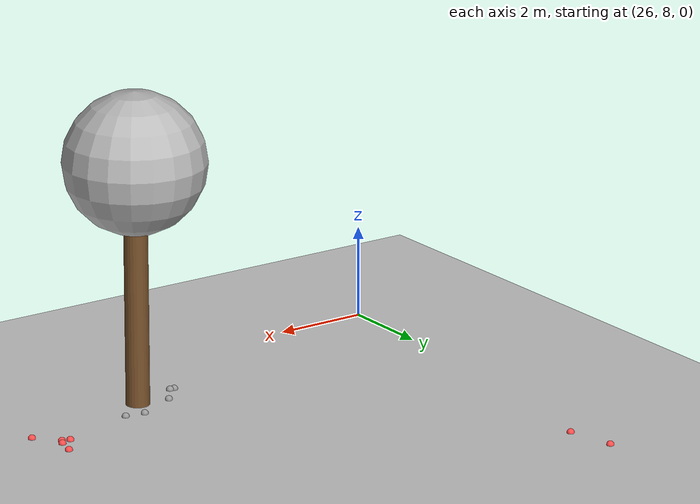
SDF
<sdf version="1.7">
 <world name="default">
  <model name="ground_plane">
   <static>1</static>
   <link name="link">
    <collision name="collision">
     <geometry><plane><normal>0 0 1</normal><size>100 100</size></plane></geometry>
     <surface>
      <contact><collide_bitmask>65535</collide_bitmask></contact>
      <friction><ode><mu>100</mu><mu2>50</mu2></ode></friction>
     </surface>
    </collision>
    <visual name="visual">
     <cast_shadows>0</cast_shadows>
     <geometry><plane><normal>0 0 1</normal><size>100 100</size></plane></geometry>
     <material>
      <script><uri>file://media/materials/scripts/gazebo.material</uri><name>Gazebo/Grey</name></script>
     </material>
    </visual>
   </link>
  </model>
  <model name="tree_simple_71">
   <static>1</static>
   <link name="link">
    <pose>0 0 0.1 0 -0 0</pose>
    <inertial>
     <mass>666</mass>
     <inertia>
      <ixx>0.0861167</ixx>
      <ixy>0</ixy>
      <ixz>0</ixz>
      <iyy>0.0861167</iyy>
      <iyz>0</iyz>
      <izz>0.0861167</izz>
     </inertia>
    </inertial>
    <collision name="collision_trunk">
     <pose>0 0 2 0 -0 0</pose>
     <geometry><cylinder><radius>0.25</radius><length>4</length></cylinder></geometry>
     <surface>
      <contact>
       <poissons_ratio>0.347</poissons_ratio>
       <elastic_modulus>8.8e+09</elastic_modulus>
       <ode><kp>100000</kp><kd>100</kd><max_vel>100</max_vel><min_depth>0.001</min_depth></ode>
      </contact>
      <friction>
       <torsional>
        <coefficient>1</coefficient>
        <use_patch_radius>0</use_patch_radius>
        <surface_radius>0.01</surface_radius>
       </torsional>
      </friction>
     </surface>
    </collision>
    <collision name="collision_treetop">
     <pose>0 0 5.2 0 -0 0</pose>
     <geometry><sphere><radius>1.5</radius></sphere></geometry>
     <surface>
      <contact>
       <poissons_ratio>0.347</poissons_ratio>
       <elastic_modulus>8.8e+09</elastic_modulus>
       <ode><kp>100000</kp><kd>100</kd><max_vel>100</max_vel><min_depth>0.001</min_depth></ode>
      </contact>
      <friction>
       <torsional>
        <coefficient>1</coefficient>
        <use_patch_radius>0</use_patch_radius>
        <surface_radius>0.01</surface_radius>
       </torsional>
      </friction>
     </surface>
    </collision>
    <visual name="trunk">
     <pose>0 0 2 0 -0 0</pose>
     <geometry><cylinder><radius>0.25</radius><length>4</length></cylinder></geometry>
     <material>
      <script>
       <uri>model://tree_simple/scripts</uri>
       <uri>model://tree_simple/materials/textures</uri>
       <name>TreeSimple/Trunk</name>
      </script>
     </material>
    </visual>
    <visual name="treetop">
     <pose>0 0 5.2 0 -0 0</pose>
     <geometry><sphere><radius>1.5</radius></sphere></geometry>
     <material>
      <script>
       <uri>model://tree_simple/scripts</uri>
       <uri>model://tree_simple/materials/textures</uri>
       <name>TreeSimple/Treetop</name>
      </script>
     </material>
    </visual>
   </link>
   <pose>33 10 -0.1 0 -0 0</pose>
  </model>
  <model name="seed_red_234">
   <link name="link">
    <inertial>
     <mass>1</mass>
     <inertia><ixx>0.1</ixx><ixy>0</ixy><ixz>0</ixz><iyy>0.1</iyy><iyz>0</iyz><izz>0.1</izz></inertia>
    </inertial>
    <visual name="visual">
     <geometry><sphere><radius>0.08</radius></sphere></geometry>
     <material>
      <script><name>Gazebo/Grey</name><uri>file://media/materials/scripts/gazebo.material</uri></script>
      <shader type="pixel"><normal_map>__default__</normal_map></shader>
      <ambient>1 0.3 0.3 1</ambient>
      <diffuse>0.7 0.7 0.7 1</diffuse>
      <specular>0.01 0.01 0.01 1</specular>
      <emissive>0 0 0 1</emissive>
     </material>
    </visual>
    <collision name="collision">
     <geometry><sphere><radius>0.0005</radius></sphere></geometry>
     <surface>
      <friction>
       <ode><mu>1</mu><mu2>1</mu2><fdir1>0 0 0</fdir1><slip1>0</slip1><slip2>0</slip2></ode>
       <torsional>
        <coefficient>1</coefficient>
        <patch_radius>0</patch_radius>
        <surface_radius>0</surface_radius>
        <use_patch_radius>1</use_patch_radius>
        <ode><slip>0</slip></ode>
       </torsional>
      </friction>
      <bounce><restitution_coefficient>0</restitution_coefficient><threshold>1e+06</threshold></bounce>
      <contact>
       <collide_without_contact>0</collide_without_contact>
       <collide_without_contact_bitmask>1</collide_without_contact_bitmask>
       <collide_bitmask>1</collide_bitmask>
       <ode>
        <soft_cfm>0</soft_cfm>
        <soft_erp>0.2</soft_erp>
        <kp>1e+13</kp>
        <kd>1</kd>
        <max_vel>0.01</max_vel>
        <min_depth>0</min_depth>
       </ode>
       <bullet>
        <split_impulse>1</split_impulse>
        <split_impulse_penetration_threshold>-0.01</split_impulse_penetration_threshold>
        <soft_cfm>0</soft_cfm>
        <soft_erp>0.2</soft_erp>
        <kp>1e+13</kp>
        <kd>1</kd>
       </bullet>
      </contact>
     </surface>
    </collision>
   </link>
   <static>0</static>
   <pose>26.737 16.4394 0.0005 0 -0 0</pose>
  </model>
  <model name="seed_red_235">
   <link name="link">
    <inertial>
     <mass>1</mass>
     <inertia><ixx>0.1</ixx><ixy>0</ixy><ixz>0</ixz><iyy>0.1</iyy><iyz>0</iyz><izz>0.1</izz></inertia>
    </inertial>
    <visual name="visual">
     <geometry><sphere><radius>0.08</radius></sphere></geometry>
     <material>
      <script><name>Gazebo/Grey</name><uri>file://media/materials/scripts/gazebo.material</uri></script>
      <shader type="pixel"><normal_map>__default__</normal_map></shader>
      <ambient>1 0.3 0.3 1</ambient>
      <diffuse>0.7 0.7 0.7 1</diffuse>
      <specular>0.01 0.01 0.01 1</specular>
      <emissive>0 0 0 1</emissive>
     </material>
    </visual>
    <collision name="collision">
     <geometry><sphere><radius>0.0005</radius></sphere></geometry>
     <surface>
      <friction>
       <ode><mu>1</mu><mu2>1</mu2><fdir1>0 0 0</fdir1><slip1>0</slip1><slip2>0</slip2></ode>
       <torsional>
        <coefficient>1</coefficient>
        <patch_radius>0</patch_radius>
        <surface_radius>0</surface_radius>
        <use_patch_radius>1</use_patch_radius>
        <ode><slip>0</slip></ode>
       </torsional>
      </friction>
      <bounce><restitution_coefficient>0</restitution_coefficient><threshold>1e+06</threshold></bounce>
      <contact>
       <collide_without_contact>0</collide_without_contact>
       <collide_without_contact_bitmask>1</collide_without_contact_bitmask>
       <collide_bitmask>1</collide_bitmask>
       <ode>
        <soft_cfm>0</soft_cfm>
        <soft_erp>0.2</soft_erp>
        <kp>1e+13</kp>
        <kd>1</kd>
        <max_vel>0.01</max_vel>
        <min_depth>0</min_depth>
       </ode>
       <bullet>
        <split_impulse>1</split_impulse>
        <split_impulse_penetration_threshold>-0.01</split_impulse_penetration_threshold>
        <soft_cfm>0</soft_cfm>
        <soft_erp>0.2</soft_erp>
        <kp>1e+13</kp>
        <kd>1</kd>
       </bullet>
      </contact>
     </surface>
    </collision>
   </link>
   <static>0</static>
   <pose>26.516 17.4502 0.0005 0 -0 0</pose>
  </model>
  <model name="seed_red_277">
   <link name="link">
    <inertial>
     <mass>1</mass>
     <inertia><ixx>0.1</ixx><ixy>0</ixy><ixz>0</ixz><iyy>0.1</iyy><iyz>0</iyz><izz>0.1</izz></inertia>
    </inertial>
    <visual name="visual">
     <geometry><sphere><radius>0.08</radius></sphere></geometry>
     <material>
      <script><name>Gazebo/Grey</name><uri>file://media/materials/scripts/gazebo.material</uri></script>
      <shader type="pixel"><normal_map>__default__</normal_map></shader>
      <ambient>1 0.3 0.3 1</ambient>
      <diffuse>0.7 0.7 0.7 1</diffuse>
      <specular>0.01 0.01 0.01 1</specular>
      <emissive>0 0 0 1</emissive>
     </material>
    </visual>
    <collision name="collision">
     <geometry><sphere><radius>0.0005</radius></sphere></geometry>
     <surface>
      <friction>
       <ode><mu>1</mu><mu2>1</mu2><fdir1>0 0 0</fdir1><slip1>0</slip1><slip2>0</slip2></ode>
       <torsional>
        <coefficient>1</coefficient>
        <patch_radius>0</patch_radius>
        <surface_radius>0</surface_radius>
        <use_patch_radius>1</use_patch_radius>
        <ode><slip>0</slip></ode>
       </torsional>
      </friction>
      <bounce><restitution_coefficient>0</restitution_coefficient><threshold>1e+06</threshold></bounce>
      <contact>
       <collide_without_contact>0</collide_without_contact>
       <collide_without_contact_bitmask>1</collide_without_contact_bitmask>
       <collide_bitmask>1</collide_bitmask>
       <ode>
        <soft_cfm>0</soft_cfm>
        <soft_erp>0.2</soft_erp>
        <kp>1e+13</kp>
        <kd>1</kd>
        <max_vel>0.01</max_vel>
        <min_depth>0</min_depth>
       </ode>
       <bullet>
        <split_impulse>1</split_impulse>
        <split_impulse_penetration_threshold>-0.01</split_impulse_penetration_threshold>
        <soft_cfm>0</soft_cfm>
        <soft_erp>0.2</soft_erp>
        <kp>1e+13</kp>
        <kd>1</kd>
       </bullet>
      </contact>
     </surface>
    </collision>
   </link>
   <static>0</static>
   <pose>35.4341 10.9434 0.0005 0 -0 0</pose>
  </model>
  <model name="seed_red_278">
   <link name="link">
    <inertial>
     <mass>1</mass>
     <inertia><ixx>0.1</ixx><ixy>0</ixy><ixz>0</ixz><iyy>0.1</iyy><iyz>0</iyz><izz>0.1</izz></inertia>
    </inertial>
    <visual name="visual">
     <geometry><sphere><radius>0.08</radius></sphere></geometry>
     <material>
      <script><name>Gazebo/Grey</name><uri>file://media/materials/scripts/gazebo.material</uri></script>
      <shader type="pixel"><normal_map>__default__</normal_map></shader>
      <ambient>1 0.3 0.3 1</ambient>
      <diffuse>0.7 0.7 0.7 1</diffuse>
      <specular>0.01 0.01 0.01 1</specular>
      <emissive>0 0 0 1</emissive>
     </material>
    </visual>
    <collision name="collision">
     <geometry><sphere><radius>0.0005</radius></sphere></geometry>
     <surface>
      <friction>
       <ode><mu>1</mu><mu2>1</mu2><fdir1>0 0 0</fdir1><slip1>0</slip1><slip2>0</slip2></ode>
       <torsional>
        <coefficient>1</coefficient>
        <patch_radius>0</patch_radius>
        <surface_radius>0</surface_radius>
        <use_patch_radius>1</use_patch_radius>
        <ode><slip>0</slip></ode>
       </torsional>
      </friction>
      <bounce><restitution_coefficient>0</restitution_coefficient><threshold>1e+06</threshold></bounce>
      <contact>
       <collide_without_contact>0</collide_without_contact>
       <collide_without_contact_bitmask>1</collide_without_contact_bitmask>
       <collide_bitmask>1</collide_bitmask>
       <ode>
        <soft_cfm>0</soft_cfm>
        <soft_erp>0.2</soft_erp>
        <kp>1e+13</kp>
        <kd>1</kd>
        <max_vel>0.01</max_vel>
        <min_depth>0</min_depth>
       </ode>
       <bullet>
        <split_impulse>1</split_impulse>
        <split_impulse_penetration_threshold>-0.01</split_impulse_penetration_threshold>
        <soft_cfm>0</soft_cfm>
        <soft_erp>0.2</soft_erp>
        <kp>1e+13</kp>
        <kd>1</kd>
       </bullet>
      </contact>
     </surface>
    </collision>
   </link>
   <static>0</static>
   <pose>35.5951 11.4662 0.0005 0 -0 0</pose>
  </model>
  <model name="seed_red_279">
   <link name="link">
    <inertial>
     <mass>1</mass>
     <inertia><ixx>0.1</ixx><ixy>0</ixy><ixz>0</ixz><iyy>0.1</iyy><iyz>0</iyz><izz>0.1</izz></inertia>
    </inertial>
    <visual name="visual">
     <geometry><sphere><radius>0.08</radius></sphere></geometry>
     <material>
      <script><name>Gazebo/Grey</name><uri>file://media/materials/scripts/gazebo.material</uri></script>
      <shader type="pixel"><normal_map>__default__</normal_map></shader>
      <ambient>1 0.3 0.3 1</ambient>
      <diffuse>0.7 0.7 0.7 1</diffuse>
      <specular>0.01 0.01 0.01 1</specular>
      <emissive>0 0 0 1</emissive>
     </material>
    </visual>
    <collision name="collision">
     <geometry><sphere><radius>0.0005</radius></sphere></geometry>
     <surface>
      <friction>
       <ode><mu>1</mu><mu2>1</mu2><fdir1>0 0 0</fdir1><slip1>0</slip1><slip2>0</slip2></ode>
       <torsional>
        <coefficient>1</coefficient>
        <patch_radius>0</patch_radius>
        <surface_radius>0</surface_radius>
        <use_patch_radius>1</use_patch_radius>
        <ode><slip>0</slip></ode>
       </torsional>
      </friction>
      <bounce><restitution_coefficient>0</restitution_coefficient><threshold>1e+06</threshold></bounce>
      <contact>
       <collide_without_contact>0</collide_without_contact>
       <collide_without_contact_bitmask>1</collide_without_contact_bitmask>
       <collide_bitmask>1</collide_bitmask>
       <ode>
        <soft_cfm>0</soft_cfm>
        <soft_erp>0.2</soft_erp>
        <kp>1e+13</kp>
        <kd>1</kd>
        <max_vel>0.01</max_vel>
        <min_depth>0</min_depth>
       </ode>
       <bullet>
        <split_impulse>1</split_impulse>
        <split_impulse_penetration_threshold>-0.01</split_impulse_penetration_threshold>
        <soft_cfm>0</soft_cfm>
        <soft_erp>0.2</soft_erp>
        <kp>1e+13</kp>
        <kd>1</kd>
       </bullet>
      </contact>
     </surface>
    </collision>
   </link>
   <static>0</static>
   <pose>35.2662 10.9945 0.0005 0 -0 0</pose>
  </model>
  <model name="seed_red_280">
   <link name="link">
    <inertial>
     <mass>1</mass>
     <inertia><ixx>0.1</ixx><ixy>0</ixy><ixz>0</ixz><iyy>0.1</iyy><iyz>0</iyz><izz>0.1</izz></inertia>
    </inertial>
    <visual name="visual">
     <geometry><sphere><radius>0.08</radius></sphere></geometry>
     <material>
      <script><name>Gazebo/Grey</name><uri>file://media/materials/scripts/gazebo.material</uri></script>
      <shader type="pixel"><normal_map>__default__</normal_map></shader>
      <ambient>1 0.3 0.3 1</ambient>
      <diffuse>0.7 0.7 0.7 1</diffuse>
      <specular>0.01 0.01 0.01 1</specular>
      <emissive>0 0 0 1</emissive>
     </material>
    </visual>
    <collision name="collision">
     <geometry><sphere><radius>0.0005</radius></sphere></geometry>
     <surface>
      <friction>
       <ode><mu>1</mu><mu2>1</mu2><fdir1>0 0 0</fdir1><slip1>0</slip1><slip2>0</slip2></ode>
       <torsional>
        <coefficient>1</coefficient>
        <patch_radius>0</patch_radius>
        <surface_radius>0</surface_radius>
        <use_patch_radius>1</use_patch_radius>
        <ode><slip>0</slip></ode>
       </torsional>
      </friction>
      <bounce><restitution_coefficient>0</restitution_coefficient><threshold>1e+06</threshold></bounce>
      <contact>
       <collide_without_contact>0</collide_without_contact>
       <collide_without_contact_bitmask>1</collide_without_contact_bitmask>
       <collide_bitmask>1</collide_bitmask>
       <ode>
        <soft_cfm>0</soft_cfm>
        <soft_erp>0.2</soft_erp>
        <kp>1e+13</kp>
        <kd>1</kd>
        <max_vel>0.01</max_vel>
        <min_depth>0</min_depth>
       </ode>
       <bullet>
        <split_impulse>1</split_impulse>
        <split_impulse_penetration_threshold>-0.01</split_impulse_penetration_threshold>
        <soft_cfm>0</soft_cfm>
        <soft_erp>0.2</soft_erp>
        <kp>1e+13</kp>
        <kd>1</kd>
       </bullet>
      </contact>
     </surface>
    </collision>
   </link>
   <static>0</static>
   <pose>35.4997 11.0697 0.0005 0 -0 0</pose>
  </model>
  <model name="seed_red_281">
   <link name="link">
    <inertial>
     <mass>1</mass>
     <inertia><ixx>0.1</ixx><ixy>0</ixy><ixz>0</ixz><iyy>0.1</iyy><iyz>0</iyz><izz>0.1</izz></inertia>
    </inertial>
    <visual name="visual">
     <geometry><sphere><radius>0.08</radius></sphere></geometry>
     <material>
      <script><name>Gazebo/Grey</name><uri>file://media/materials/scripts/gazebo.material</uri></script>
      <shader type="pixel"><normal_map>__default__</normal_map></shader>
      <ambient>1 0.3 0.3 1</ambient>
      <diffuse>0.7 0.7 0.7 1</diffuse>
      <specular>0.01 0.01 0.01 1</specular>
      <emissive>0 0 0 1</emissive>
     </material>
    </visual>
    <collision name="collision">
     <geometry><sphere><radius>0.0005</radius></sphere></geometry>
     <surface>
      <friction>
       <ode><mu>1</mu><mu2>1</mu2><fdir1>0 0 0</fdir1><slip1>0</slip1><slip2>0</slip2></ode>
       <torsional>
        <coefficient>1</coefficient>
        <patch_radius>0</patch_radius>
        <surface_radius>0</surface_radius>
        <use_patch_radius>1</use_patch_radius>
        <ode><slip>0</slip></ode>
       </torsional>
      </friction>
      <bounce><restitution_coefficient>0</restitution_coefficient><threshold>1e+06</threshold></bounce>
      <contact>
       <collide_without_contact>0</collide_without_contact>
       <collide_without_contact_bitmask>1</collide_without_contact_bitmask>
       <collide_bitmask>1</collide_bitmask>
       <ode>
        <soft_cfm>0</soft_cfm>
        <soft_erp>0.2</soft_erp>
        <kp>1e+13</kp>
        <kd>1</kd>
        <max_vel>0.01</max_vel>
        <min_depth>0</min_depth>
       </ode>
       <bullet>
        <split_impulse>1</split_impulse>
        <split_impulse_penetration_threshold>-0.01</split_impulse_penetration_threshold>
        <soft_cfm>0</soft_cfm>
        <soft_erp>0.2</soft_erp>
        <kp>1e+13</kp>
        <kd>1</kd>
       </bullet>
      </contact>
     </surface>
    </collision>
   </link>
   <static>0</static>
   <pose>35.8527 10.4725 0.0005 0 -0 0</pose>
  </model>
  <model name="seed_black_56">
   <link name="link">
    <inertial>
     <mass>1</mass>
     <inertia><ixx>0.1</ixx><ixy>0</ixy><ixz>0</ixz><iyy>0.1</iyy><iyz>0</iyz><izz>0.1</izz></inertia>
    </inertial>
    <visual name="visual">
     <geometry><sphere><radius>0.08</radius></sphere></geometry>
     <material>
      <script><name>Gazebo/Grey</name><uri>file://media/materials/scripts/gazebo.material</uri></script>
      <shader type="pixel"><normal_map>__default__</normal_map></shader>
      <ambient>0 0 0 1</ambient>
      <diffuse>0.7 0.7 0.7 1</diffuse>
      <specular>0.01 0.01 0.01 1</specular>
      <emissive>0 0 0 1</emissive>
     </material>
    </visual>
    <collision name="collision">
     <geometry><sphere><radius>0.0005</radius></sphere></geometry>
     <surface>
      <friction>
       <ode><mu>1</mu><mu2>1</mu2><fdir1>0 0 0</fdir1><slip1>0</slip1><slip2>0</slip2></ode>
       <torsional>
        <coefficient>1</coefficient>
        <patch_radius>0</patch_radius>
        <surface_radius>0</surface_radius>
        <use_patch_radius>1</use_patch_radius>
        <ode><slip>0</slip></ode>
       </torsional>
      </friction>
      <bounce><restitution_coefficient>0</restitution_coefficient><threshold>1e+06</threshold></bounce>
      <contact>
       <collide_without_contact>0</collide_without_contact>
       <collide_without_contact_bitmask>1</collide_without_contact_bitmask>
       <collide_bitmask>1</collide_bitmask>
       <ode>
        <soft_cfm>0</soft_cfm>
        <soft_erp>0.2</soft_erp>
        <kp>1e+13</kp>
        <kd>1</kd>
        <max_vel>0.01</max_vel>
        <min_depth>0</min_depth>
       </ode>
       <bullet>
        <split_impulse>1</split_impulse>
        <split_impulse_penetration_threshold>-0.01</split_impulse_penetration_threshold>
        <soft_cfm>0</soft_cfm>
        <soft_erp>0.2</soft_erp>
        <kp>1e+13</kp>
        <kd>1</kd>
       </bullet>
      </contact>
     </surface>
    </collision>
   </link>
   <static>0</static>
   <pose>33.6072 10.4761 0.0005 0 -0 0</pose>
  </model>
  <model name="seed_black_57">
   <link name="link">
    <inertial>
     <mass>1</mass>
     <inertia><ixx>0.1</ixx><ixy>0</ixy><ixz>0</ixz><iyy>0.1</iyy><iyz>0</iyz><izz>0.1</izz></inertia>
    </inertial>
    <visual name="visual">
     <geometry><sphere><radius>0.08</radius></sphere></geometry>
     <material>
      <script><name>Gazebo/Grey</name><uri>file://media/materials/scripts/gazebo.material</uri></script>
      <shader type="pixel"><normal_map>__default__</normal_map></shader>
      <ambient>0 0 0 1</ambient>
      <diffuse>0.7 0.7 0.7 1</diffuse>
      <specular>0.01 0.01 0.01 1</specular>
      <emissive>0 0 0 1</emissive>
     </material>
    </visual>
    <collision name="collision">
     <geometry><sphere><radius>0.0005</radius></sphere></geometry>
     <surface>
      <friction>
       <ode><mu>1</mu><mu2>1</mu2><fdir1>0 0 0</fdir1><slip1>0</slip1><slip2>0</slip2></ode>
       <torsional>
        <coefficient>1</coefficient>
        <patch_radius>0</patch_radius>
        <surface_radius>0</surface_radius>
        <use_patch_radius>1</use_patch_radius>
        <ode><slip>0</slip></ode>
       </torsional>
      </friction>
      <bounce><restitution_coefficient>0</restitution_coefficient><threshold>1e+06</threshold></bounce>
      <contact>
       <collide_without_contact>0</collide_without_contact>
       <collide_without_contact_bitmask>1</collide_without_contact_bitmask>
       <collide_bitmask>1</collide_bitmask>
       <ode>
        <soft_cfm>0</soft_cfm>
        <soft_erp>0.2</soft_erp>
        <kp>1e+13</kp>
        <kd>1</kd>
        <max_vel>0.01</max_vel>
        <min_depth>0</min_depth>
       </ode>
       <bullet>
        <split_impulse>1</split_impulse>
        <split_impulse_penetration_threshold>-0.01</split_impulse_penetration_threshold>
        <soft_cfm>0</soft_cfm>
        <soft_erp>0.2</soft_erp>
        <kp>1e+13</kp>
        <kd>1</kd>
       </bullet>
      </contact>
     </surface>
    </collision>
   </link>
   <static>0</static>
   <pose>31.9762 9.64301 0.0005 0 -0 0</pose>
  </model>
  <model name="seed_black_58">
   <link name="link">
    <inertial>
     <mass>1</mass>
     <inertia><ixx>0.1</ixx><ixy>0</ixy><ixz>0</ixz><iyy>0.1</iyy><iyz>0</iyz><izz>0.1</izz></inertia>
    </inertial>
    <visual name="visual">
     <geometry><sphere><radius>0.08</radius></sphere></geometry>
     <material>
      <script><name>Gazebo/Grey</name><uri>file://media/materials/scripts/gazebo.material</uri></script>
      <shader type="pixel"><normal_map>__default__</normal_map></shader>
      <ambient>0 0 0 1</ambient>
      <diffuse>0.7 0.7 0.7 1</diffuse>
      <specular>0.01 0.01 0.01 1</specular>
      <emissive>0 0 0 1</emissive>
     </material>
    </visual>
    <collision name="collision">
     <geometry><sphere><radius>0.0005</radius></sphere></geometry>
     <surface>
      <friction>
       <ode><mu>1</mu><mu2>1</mu2><fdir1>0 0 0</fdir1><slip1>0</slip1><slip2>0</slip2></ode>
       <torsional>
        <coefficient>1</coefficient>
        <patch_radius>0</patch_radius>
        <surface_radius>0</surface_radius>
        <use_patch_radius>1</use_patch_radius>
        <ode><slip>0</slip></ode>
       </torsional>
      </friction>
      <bounce><restitution_coefficient>0</restitution_coefficient><threshold>1e+06</threshold></bounce>
      <contact>
       <collide_without_contact>0</collide_without_contact>
       <collide_without_contact_bitmask>1</collide_without_contact_bitmask>
       <collide_bitmask>1</collide_bitmask>
       <ode>
        <soft_cfm>0</soft_cfm>
        <soft_erp>0.2</soft_erp>
        <kp>1e+13</kp>
        <kd>1</kd>
        <max_vel>0.01</max_vel>
        <min_depth>0</min_depth>
       </ode>
       <bullet>
        <split_impulse>1</split_impulse>
        <split_impulse_penetration_threshold>-0.01</split_impulse_penetration_threshold>
        <soft_cfm>0</soft_cfm>
        <soft_erp>0.2</soft_erp>
        <kp>1e+13</kp>
        <kd>1</kd>
       </bullet>
      </contact>
     </surface>
    </collision>
   </link>
   <static>0</static>
   <pose>32.3186 10.12 0.0005 0 -0 0</pose>
  </model>
  <model name="seed_black_59">
   <link name="link">
    <inertial>
     <mass>1</mass>
     <inertia><ixx>0.1</ixx><ixy>0</ixy><ixz>0</ixz><iyy>0.1</iyy><iyz>0</iyz><izz>0.1</izz></inertia>
    </inertial>
    <visual name="visual">
     <geometry><sphere><radius>0.08</radius></sphere></geometry>
     <material>
      <script><name>Gazebo/Grey</name><uri>file://media/materials/scripts/gazebo.material</uri></script>
      <shader type="pixel"><normal_map>__default__</normal_map></shader>
      <ambient>0 0 0 1</ambient>
      <diffuse>0.7 0.7 0.7 1</diffuse>
      <specular>0.01 0.01 0.01 1</specular>
      <emissive>0 0 0 1</emissive>
     </material>
    </visual>
    <collision name="collision">
     <geometry><sphere><radius>0.0005</radius></sphere></geometry>
     <surface>
      <friction>
       <ode><mu>1</mu><mu2>1</mu2><fdir1>0 0 0</fdir1><slip1>0</slip1><slip2>0</slip2></ode>
       <torsional>
        <coefficient>1</coefficient>
        <patch_radius>0</patch_radius>
        <surface_radius>0</surface_radius>
        <use_patch_radius>1</use_patch_radius>
        <ode><slip>0</slip></ode>
       </torsional>
      </friction>
      <bounce><restitution_coefficient>0</restitution_coefficient><threshold>1e+06</threshold></bounce>
      <contact>
       <collide_without_contact>0</collide_without_contact>
       <collide_without_contact_bitmask>1</collide_without_contact_bitmask>
       <collide_bitmask>1</collide_bitmask>
       <ode>
        <soft_cfm>0</soft_cfm>
        <soft_erp>0.2</soft_erp>
        <kp>1e+13</kp>
        <kd>1</kd>
        <max_vel>0.01</max_vel>
        <min_depth>0</min_depth>
       </ode>
       <bullet>
        <split_impulse>1</split_impulse>
        <split_impulse_penetration_threshold>-0.01</split_impulse_penetration_threshold>
        <soft_cfm>0</soft_cfm>
        <soft_erp>0.2</soft_erp>
        <kp>1e+13</kp>
        <kd>1</kd>
       </bullet>
      </contact>
     </surface>
    </collision>
   </link>
   <static>0</static>
   <pose>33.1855 10.5428 0.0005 0 -0 0</pose>
  </model>
  <model name="seed_black_61">
   <link name="link">
    <inertial>
     <mass>1</mass>
     <inertia><ixx>0.1</ixx><ixy>0</ixy><ixz>0</ixz><iyy>0.1</iyy><iyz>0</iyz><izz>0.1</izz></inertia>
    </inertial>
    <visual name="visual">
     <geometry><sphere><radius>0.08</radius></sphere></geometry>
     <material>
      <script><name>Gazebo/Grey</name><uri>file://media/materials/scripts/gazebo.material</uri></script>
      <shader type="pixel"><normal_map>__default__</normal_map></shader>
      <ambient>0 0 0 1</ambient>
      <diffuse>0.7 0.7 0.7 1</diffuse>
      <specular>0.01 0.01 0.01 1</specular>
      <emissive>0 0 0 1</emissive>
     </material>
    </visual>
    <collision name="collision">
     <geometry><sphere><radius>0.0005</radius></sphere></geometry>
     <surface>
      <friction>
       <ode><mu>1</mu><mu2>1</mu2><fdir1>0 0 0</fdir1><slip1>0</slip1><slip2>0</slip2></ode>
       <torsional>
        <coefficient>1</coefficient>
        <patch_radius>0</patch_radius>
        <surface_radius>0</surface_radius>
        <use_patch_radius>1</use_patch_radius>
        <ode><slip>0</slip></ode>
       </torsional>
      </friction>
      <bounce><restitution_coefficient>0</restitution_coefficient><threshold>1e+06</threshold></bounce>
      <contact>
       <collide_without_contact>0</collide_without_contact>
       <collide_without_contact_bitmask>1</collide_without_contact_bitmask>
       <collide_bitmask>1</collide_bitmask>
       <ode>
        <soft_cfm>0</soft_cfm>
        <soft_erp>0.2</soft_erp>
        <kp>1e+13</kp>
        <kd>1</kd>
        <max_vel>0.01</max_vel>
        <min_depth>0</min_depth>
       </ode>
       <bullet>
        <split_impulse>1</split_impulse>
        <split_impulse_penetration_threshold>-0.01</split_impulse_penetration_threshold>
        <soft_cfm>0</soft_cfm>
        <soft_erp>0.2</soft_erp>
        <kp>1e+13</kp>
        <kd>1</kd>
       </bullet>
      </contact>
     </surface>
    </collision>
   </link>
   <static>0</static>
   <pose>31.8752 9.64691 0.0005 0 -0 0</pose>
  </model>
 </world>
</sdf>
